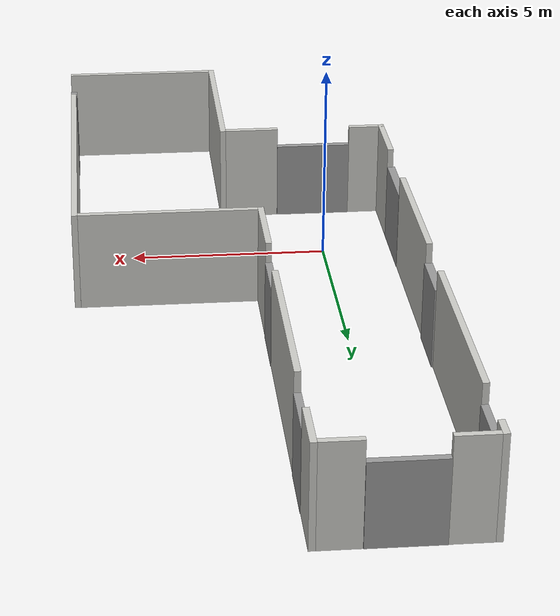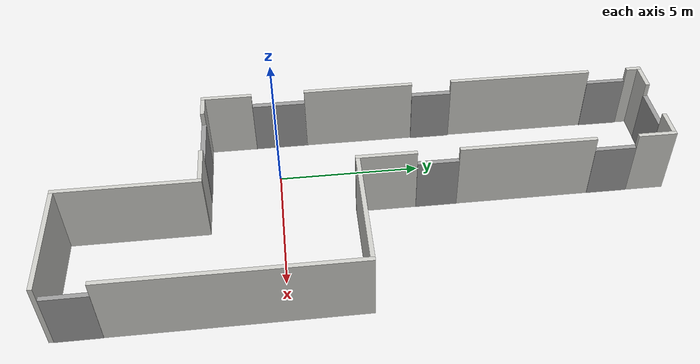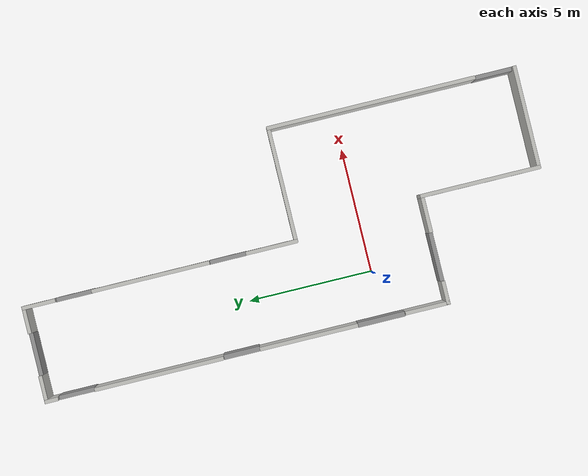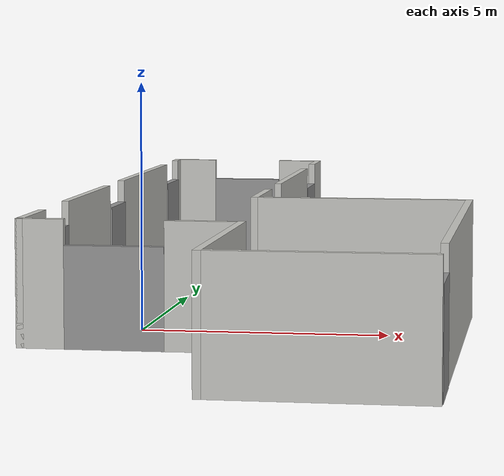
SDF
<?xml version='1.0'?>
<sdf version='1.7'>
  <model name='pasillo_cextension'>
    <pose>2.295 3.175 0 0 -0 0</pose>
    <link name='Door_1'>
      <collision name='Door_1_Collision'>
        <geometry>
          <box>
            <size>1.95 0.17 2</size>
          </box>
        </geometry>
        <pose>0 0 1 0 -0 0</pose>
      </collision>
      <visual name='Door_1_Visual'>
        <pose>0 0 1 0 -0 0</pose>
        <geometry>
          <box>
            <size>1.95 0.17 2</size>
          </box>
        </geometry>
        <material>
          <script>
            <uri>file://media/materials/scripts/gazebo.material</uri>
            <name>Gazebo/Grey</name>
          </script>
        </material>
      </visual>
      <pose>-2.295 -5.725 0 0 -0 0</pose>
    </link>
    <link name='Door_2'>
      <collision name='Door_2_Collision'>
        <geometry>
          <box>
            <size>1.9 0.2 2</size>
          </box>
        </geometry>
        <pose>0 0 1 0 -0 0</pose>
      </collision>
      <visual name='Door_2_Visual'>
        <pose>0 0 1 0 -0 0</pose>
        <geometry>
          <box>
            <size>1.9 0.2 2</size>
          </box>
        </geometry>
        <material>
          <script>
            <uri>file://media/materials/scripts/gazebo.material</uri>
            <name>Gazebo/Grey</name>
          </script>
        </material>
      </visual>
      <pose>-4.17 -3.055 0 0 -0 -1.57019</pose>
    </link>
    <link name='Door_3'>
      <collision name='Door_3_Collision'>
        <geometry>
          <box>
            <size>1.45 0.2 2</size>
          </box>
        </geometry>
        <pose>0 0 1 0 -0 0</pose>
      </collision>
      <visual name='Door_3_Visual'>
        <pose>0 0 1 0 -0 0</pose>
        <geometry>
          <box>
            <size>1.45 0.2 2</size>
          </box>
        </geometry>
        <material>
          <script>
            <uri>file://media/materials/scripts/gazebo.material</uri>
            <name>Gazebo/Grey</name>
          </script>
        </material>
      </visual>
      <pose>-4.145 2.575 0 0 -0 -1.57264</pose>
    </link>
    <link name='Door_4'>
      <collision name='Door_4_Collision'>
        <geometry>
          <box>
            <size>1.45 0.17 2</size>
          </box>
        </geometry>
        <pose>0 0 1 0 -0 0</pose>
      </collision>
      <visual name='Door_4_Visual'>
        <pose>0 0 1 0 -0 0</pose>
        <geometry>
          <box>
            <size>1.45 0.17 2</size>
          </box>
        </geometry>
        <material>
          <script>
            <uri>file://media/materials/scripts/gazebo.material</uri>
            <name>Gazebo/Grey</name>
          </script>
        </material>
      </visual>
      <pose>-4.145 9.225 0 0 -0 -1.57163</pose>
    </link>
    <link name='Door_5'>
      <collision name='Door_5_Collision'>
        <geometry>
          <box>
            <size>1.7 0.17 2</size>
          </box>
        </geometry>
        <pose>0 0 1 0 -0 0</pose>
      </collision>
      <visual name='Door_5_Visual'>
        <pose>0 0 1 0 -0 0</pose>
        <geometry>
          <box>
            <size>1.7 0.17 2</size>
          </box>
        </geometry>
        <material>
          <script>
            <uri>file://media/materials/scripts/gazebo.material</uri>
            <name>Gazebo/Grey</name>
          </script>
        </material>
      </visual>
      <pose>-2.275 10.425 0 0 -0 3.14085</pose>
    </link>
    <link name='Door_6'>
      <collision name='Door_6_Collision'>
        <geometry>
          <box>
            <size>1.45 0.17 2</size>
          </box>
        </geometry>
        <pose>0 0 1 0 -0 0</pose>
      </collision>
      <visual name='Door_6_Visual'>
        <pose>0 0 1 0 -0 0</pose>
        <geometry>
          <box>
            <size>1.45 0.17 2</size>
          </box>
        </geometry>
        <material>
          <script>
            <uri>file://media/materials/scripts/gazebo.material</uri>
            <name>Gazebo/Grey</name>
          </script>
        </material>
      </visual>
      <pose>-0.395 8.425 0 0 -0 1.57077</pose>
    </link>
    <link name='Door_7'>
      <collision name='Door_7_Collision'>
        <geometry>
          <box>
            <size>1.45 0.17 2</size>
          </box>
        </geometry>
        <pose>0 0 1 0 -0 0</pose>
      </collision>
      <visual name='Door_7_Visual'>
        <pose>0 0 1 0 -0 0</pose>
        <geometry>
          <box>
            <size>1.45 0.17 2</size>
          </box>
        </geometry>
        <material>
          <script>
            <uri>file://media/materials/scripts/gazebo.material</uri>
            <name>Gazebo/Grey</name>
          </script>
        </material>
      </visual>
      <pose>-0.395 2.225 0 0 -0 1.5708</pose>
    </link>
    <link name='Door_8'>
      <collision name='Door_8_Collision'>
        <geometry>
          <box>
            <size>1.5 0.17 2</size>
          </box>
        </geometry>
        <pose>0 0 1 0 -0 0</pose>
      </collision>
      <visual name='Door_8_Visual'>
        <pose>0 0 1 0 -0 0</pose>
        <geometry>
          <box>
            <size>1.5 0.17 2</size>
          </box>
        </geometry>
        <material>
          <script>
            <uri>file://media/materials/scripts/gazebo.material</uri>
            <name>Gazebo/Grey</name>
          </script>
        </material>
      </visual>
      <pose>4.155 -9.595 0 0 -0 1.57287</pose>
    </link>
    <link name='Wall_12'>
      <collision name='Wall_12_Collision'>
        <geometry>
          <box>
            <size>0.55 0.15 2.5</size>
          </box>
        </geometry>
        <pose>0 0 1.25 0 -0 0</pose>
      </collision>
      <visual name='Wall_12_Visual'>
        <pose>0 0 1.25 0 -0 0</pose>
        <geometry>
          <box>
            <size>0.55 0.15 2.5</size>
          </box>
        </geometry>
        <material>
          <script>
            <uri>file://media/materials/scripts/gazebo.material</uri>
            <name>Gazebo/CeilingTiled</name>
          </script>
          <ambient>1 1 1 1</ambient>
        </material>
        <meta>
          <layer>0</layer>
        </meta>
      </visual>
      <pose>-4.155 10.225 0 0 -0 1.5708</pose>
    </link>
    <link name='Wall_14'>
      <collision name='Wall_14_Collision'>
        <geometry>
          <box>
            <size>0.97 0.15 2.5</size>
          </box>
        </geometry>
        <pose>0 0 1.25 0 -0 0</pose>
      </collision>
      <visual name='Wall_14_Visual'>
        <pose>0 0 1.25 0 -0 0</pose>
        <geometry>
          <box>
            <size>0.97 0.15 2.5</size>
          </box>
        </geometry>
        <material>
          <script>
            <uri>file://media/materials/scripts/gazebo.material</uri>
            <name>Gazebo/CeilingTiled</name>
          </script>
          <ambient>1 1 1 1</ambient>
        </material>
        <meta>
          <layer>0</layer>
        </meta>
      </visual>
      <pose>-3.605 10.425 0 0 -0 0</pose>
    </link>
    <link name='Wall_16'>
      <collision name='Wall_16_Collision'>
        <geometry>
          <box>
            <size>0.95 0.15 2.5</size>
          </box>
        </geometry>
        <pose>0 0 1.25 0 -0 0</pose>
      </collision>
      <visual name='Wall_16_Visual'>
        <pose>0 0 1.25 0 -0 0</pose>
        <geometry>
          <box>
            <size>0.95 0.15 2.5</size>
          </box>
        </geometry>
        <material>
          <script>
            <uri>file://media/materials/scripts/gazebo.material</uri>
            <name>Gazebo/CeilingTiled</name>
          </script>
          <ambient>1 1 1 1</ambient>
        </material>
        <meta>
          <layer>0</layer>
        </meta>
      </visual>
      <pose>-0.945 10.425 0 0 -0 0</pose>
    </link>
    <link name='Wall_18'>
      <collision name='Wall_18_Collision'>
        <geometry>
          <box>
            <size>1.35 0.15 2.5</size>
          </box>
        </geometry>
        <pose>0 0 1.25 0 -0 0</pose>
      </collision>
      <visual name='Wall_18_Visual'>
        <pose>0 0 1.25 0 -0 0</pose>
        <geometry>
          <box>
            <size>1.35 0.15 2.5</size>
          </box>
        </geometry>
        <material>
          <script>
            <uri>file://media/materials/scripts/gazebo.material</uri>
            <name>Gazebo/CeilingTiled</name>
          </script>
          <ambient>1 1 1 1</ambient>
        </material>
        <meta>
          <layer>0</layer>
        </meta>
      </visual>
      <pose>-0.395 9.825 0 0 -0 -1.5708</pose>
    </link>
    <link name='Wall_20'>
      <collision name='Wall_20_Collision'>
        <geometry>
          <box>
            <size>4.75 0.15 2.5</size>
          </box>
        </geometry>
        <pose>0 0 1.25 0 -0 0</pose>
      </collision>
      <visual name='Wall_20_Visual'>
        <pose>0 0 1.25 0 -0 0</pose>
        <geometry>
          <box>
            <size>4.75 0.15 2.5</size>
          </box>
        </geometry>
        <material>
          <script>
            <uri>file://media/materials/scripts/gazebo.material</uri>
            <name>Gazebo/CeilingTiled</name>
          </script>
          <ambient>1 1 1 1</ambient>
        </material>
        <meta>
          <layer>0</layer>
        </meta>
      </visual>
      <pose>-0.395 5.325 0 0 -0 -1.5708</pose>
    </link>
    <link name='Wall_22'>
      <collision name='Wall_22_Collision'>
        <geometry>
          <box>
            <size>2.1 0.15 2.5</size>
          </box>
        </geometry>
        <pose>0 0 1.25 0 -0 0</pose>
      </collision>
      <visual name='Wall_22_Visual'>
        <pose>0 0 1.25 0 -0 0</pose>
        <geometry>
          <box>
            <size>2.1 0.15 2.5</size>
          </box>
        </geometry>
        <material>
          <script>
            <uri>file://media/materials/scripts/gazebo.material</uri>
            <name>Gazebo/CeilingTiled</name>
          </script>
          <ambient>1 1 1 1</ambient>
        </material>
        <meta>
          <layer>0</layer>
        </meta>
      </visual>
      <pose>-0.395 0.45 0 0 -0 -1.5708</pose>
    </link>
    <link name='Wall_24'>
      <collision name='Wall_24_Collision'>
        <geometry>
          <box>
            <size>4.4 0.15 2.5</size>
          </box>
        </geometry>
        <pose>0 0 1.25 0 -0 0</pose>
      </collision>
      <visual name='Wall_24_Visual'>
        <pose>0 0 1.25 0 -0 0</pose>
        <geometry>
          <box>
            <size>4.4 0.15 2.5</size>
          </box>
        </geometry>
        <material>
          <script>
            <uri>file://media/materials/scripts/gazebo.material</uri>
            <name>Gazebo/CeilingTiled</name>
          </script>
          <ambient>1 1 1 1</ambient>
        </material>
        <meta>
          <layer>0</layer>
        </meta>
      </visual>
      <pose>1.88 -0.525 0 0 -0 0</pose>
    </link>
    <link name='Wall_26'>
      <collision name='Wall_26_Collision'>
        <geometry>
          <box>
            <size>8.4 0.15 2.5</size>
          </box>
        </geometry>
        <pose>0 0 1.25 0 -0 0</pose>
      </collision>
      <visual name='Wall_26_Visual'>
        <pose>0 0 1.25 0 -0 0</pose>
        <geometry>
          <box>
            <size>8.4 0.15 2.5</size>
          </box>
        </geometry>
        <material>
          <script>
            <uri>file://media/materials/scripts/gazebo.material</uri>
            <name>Gazebo/CeilingTiled</name>
          </script>
          <ambient>1 1 1 1</ambient>
        </material>
        <meta>
          <layer>0</layer>
        </meta>
      </visual>
      <pose>4.155 -4.65 0 0 -0 -1.5708</pose>
    </link>
    <link name='Wall_28'>
      <collision name='Wall_28_Collision'>
        <geometry>
          <box>
            <size>4 0.15 2.5</size>
          </box>
        </geometry>
        <pose>0 0 1.25 0 -0 0</pose>
      </collision>
      <visual name='Wall_28_Visual'>
        <pose>0 0 1.25 0 -0 0</pose>
        <geometry>
          <box>
            <size>4 0.15 2.5</size>
          </box>
        </geometry>
        <material>
          <script>
            <uri>file://media/materials/scripts/gazebo.material</uri>
            <name>Gazebo/CeilingTiled</name>
          </script>
          <ambient>1 1 1 1</ambient>
        </material>
        <meta>
          <layer>0</layer>
        </meta>
      </visual>
      <pose>2.23 -10.425 0 0 -0 3.14159</pose>
    </link>
    <link name='Wall_3'>
      <collision name='Wall_3_Collision'>
        <geometry>
          <box>
            <size>0.95 0.15 2.5</size>
          </box>
        </geometry>
        <pose>0 0 1.25 0 -0 0</pose>
      </collision>
      <visual name='Wall_3_Visual'>
        <pose>0 0 1.25 0 -0 0</pose>
        <geometry>
          <box>
            <size>0.95 0.15 2.5</size>
          </box>
        </geometry>
        <material>
          <script>
            <uri>file://media/materials/scripts/gazebo.material</uri>
            <name>Gazebo/CeilingTiled</name>
          </script>
          <ambient>1 1 1 1</ambient>
        </material>
        <meta>
          <layer>0</layer>
        </meta>
      </visual>
      <pose>-3.745 -5.725 0 0 -0 3.14159</pose>
    </link>
    <link name='Wall_30'>
      <collision name='Wall_30_Collision'>
        <geometry>
          <box>
            <size>4.85 0.15 2.5</size>
          </box>
        </geometry>
        <pose>0 0 1.25 0 -0 0</pose>
      </collision>
      <visual name='Wall_30_Visual'>
        <pose>0 0 1.25 0 -0 0</pose>
        <geometry>
          <box>
            <size>4.85 0.15 2.5</size>
          </box>
        </geometry>
        <material>
          <script>
            <uri>file://media/materials/scripts/gazebo.material</uri>
            <name>Gazebo/CeilingTiled</name>
          </script>
          <ambient>1 1 1 1</ambient>
        </material>
        <meta>
          <layer>0</layer>
        </meta>
      </visual>
      <pose>0.155 -8.075 0 0 -0 1.5708</pose>
    </link>
    <link name='Wall_32'>
      <collision name='Wall_32_Collision'>
        <geometry>
          <box>
            <size>1.4 0.15 2.5</size>
          </box>
        </geometry>
        <pose>0 0 1.25 0 -0 0</pose>
      </collision>
      <visual name='Wall_32_Visual'>
        <pose>0 0 1.25 0 -0 0</pose>
        <geometry>
          <box>
            <size>1.4 0.15 2.5</size>
          </box>
        </geometry>
        <material>
          <script>
            <uri>file://media/materials/scripts/gazebo.material</uri>
            <name>Gazebo/CeilingTiled</name>
          </script>
          <ambient>1 1 1 1</ambient>
        </material>
        <meta>
          <layer>0</layer>
        </meta>
      </visual>
      <pose>-0.62 -5.725 0 0 -0 0</pose>
    </link>
    <link name='Wall_5'>
      <collision name='Wall_5_Collision'>
        <geometry>
          <box>
            <size>1.8 0.15 2.5</size>
          </box>
        </geometry>
        <pose>0 0 1.25 0 -0 0</pose>
      </collision>
      <visual name='Wall_5_Visual'>
        <pose>0 0 1.25 0 -0 0</pose>
        <geometry>
          <box>
            <size>1.8 0.15 2.5</size>
          </box>
        </geometry>
        <material>
          <script>
            <uri>file://media/materials/scripts/gazebo.material</uri>
            <name>Gazebo/CeilingTiled</name>
          </script>
          <ambient>1 1 1 1</ambient>
        </material>
        <meta>
          <layer>0</layer>
        </meta>
      </visual>
      <pose>-4.145 -4.9 0 0 -0 1.5708</pose>
    </link>
    <link name='Wall_7'>
      <collision name='Wall_7_Collision'>
        <geometry>
          <box>
            <size>3.95 0.15 2.5</size>
          </box>
        </geometry>
        <pose>0 0 1.25 0 -0 0</pose>
      </collision>
      <visual name='Wall_7_Visual'>
        <pose>0 0 1.25 0 -0 0</pose>
        <geometry>
          <box>
            <size>3.95 0.15 2.5</size>
          </box>
        </geometry>
        <material>
          <script>
            <uri>file://media/materials/scripts/gazebo.material</uri>
            <name>Gazebo/CeilingTiled</name>
          </script>
          <ambient>1 1 1 1</ambient>
        </material>
        <meta>
          <layer>0</layer>
        </meta>
      </visual>
      <pose>-4.155 -0.125 0 0 -0 1.5708</pose>
    </link>
    <link name='Wall_9'>
      <collision name='Wall_9_Collision'>
        <geometry>
          <box>
            <size>5.2 0.15 2.5</size>
          </box>
        </geometry>
        <pose>0 0 1.25 0 -0 0</pose>
      </collision>
      <visual name='Wall_9_Visual'>
        <pose>0 0 1.25 0 -0 0</pose>
        <geometry>
          <box>
            <size>5.2 0.15 2.5</size>
          </box>
        </geometry>
        <material>
          <script>
            <uri>file://media/materials/scripts/gazebo.material</uri>
            <name>Gazebo/CeilingTiled</name>
          </script>
          <ambient>1 1 1 1</ambient>
        </material>
        <meta>
          <layer>0</layer>
        </meta>
      </visual>
      <pose>-4.155 5.9 0 0 -0 1.5708</pose>
    </link>
    <static>1</static>
  </model>
</sdf>
